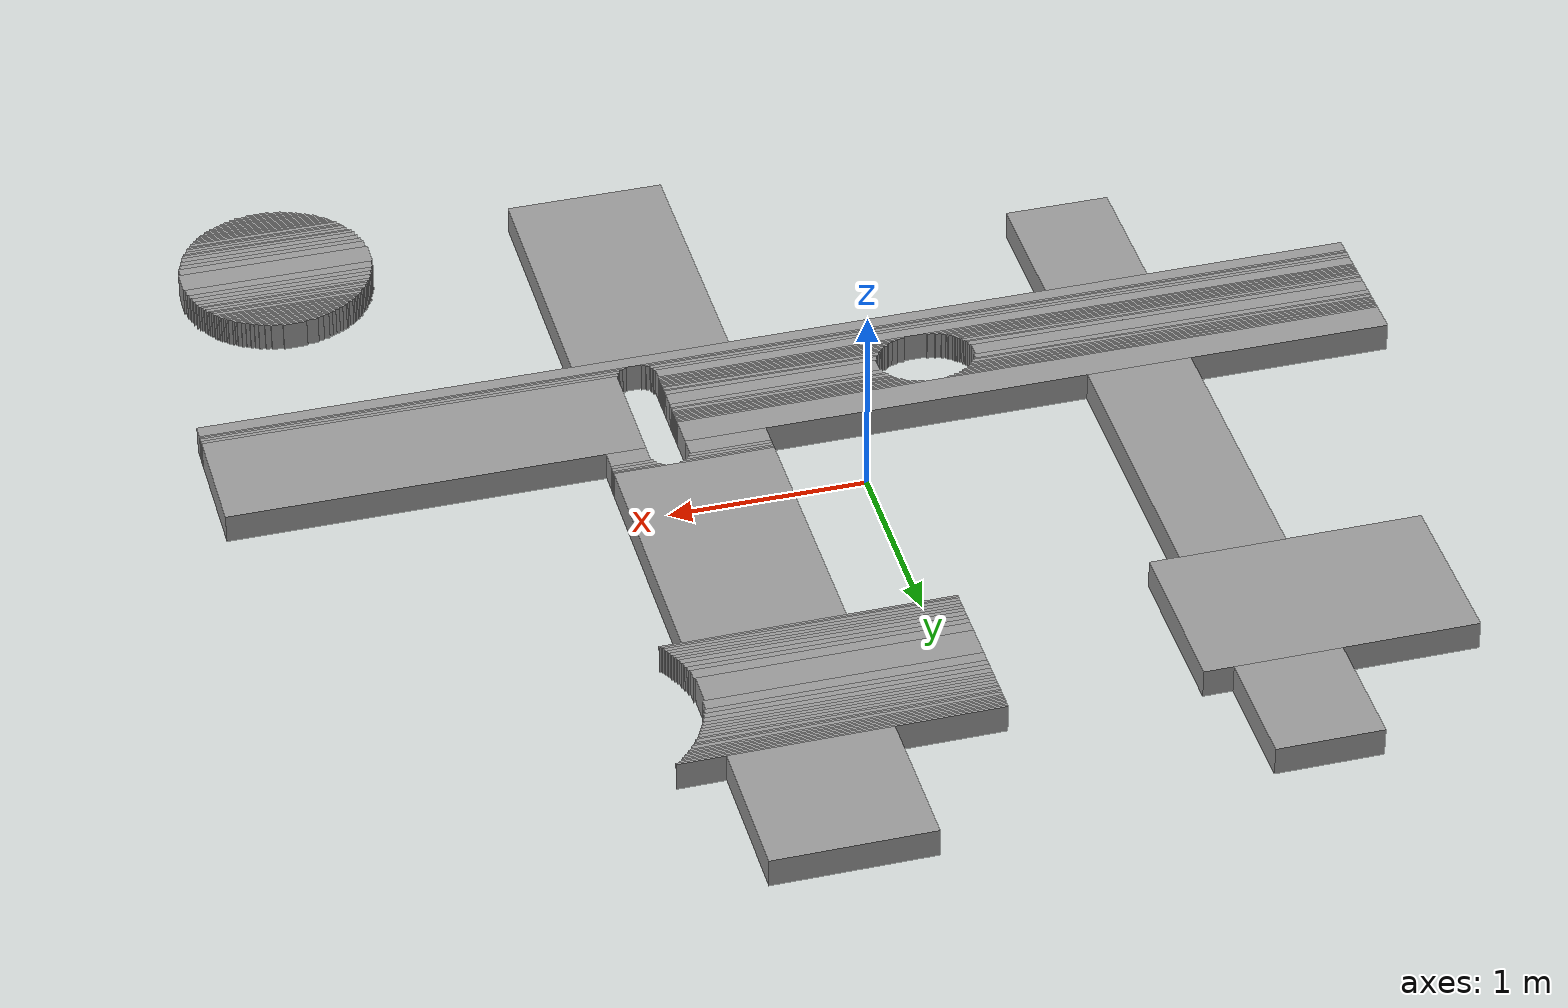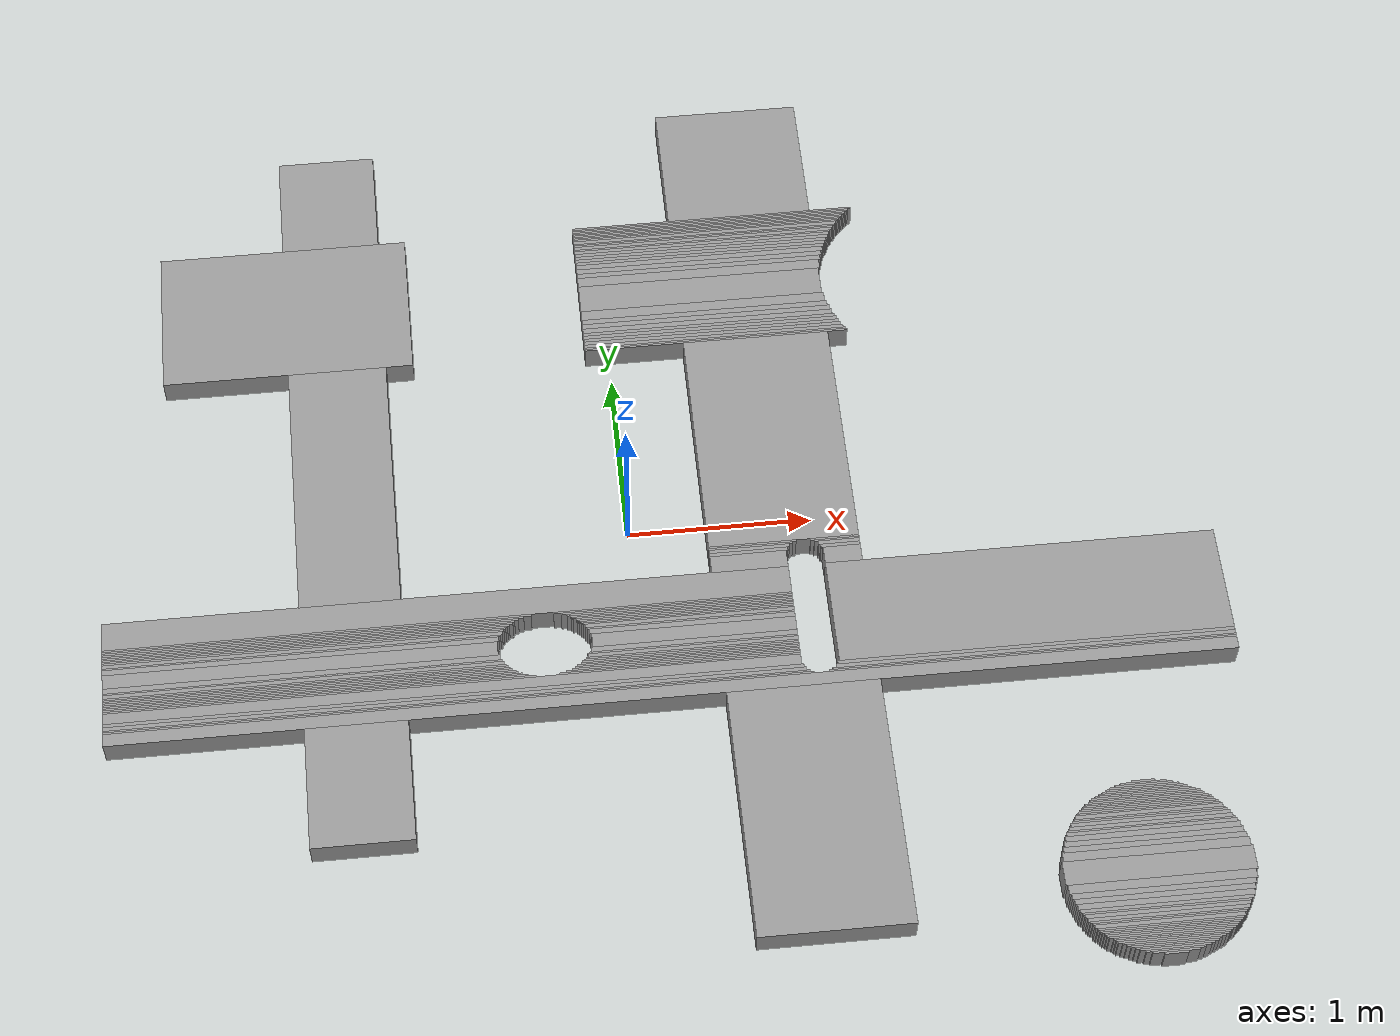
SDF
<sdf version="1.5">
 <world name="default">
  <include><uri>model://new_model</uri><pose>-4.000000 -3.000000 0 0 0 0</pose></include>
  <include><uri>model://sun</uri></include>
 </world>
</sdf>
